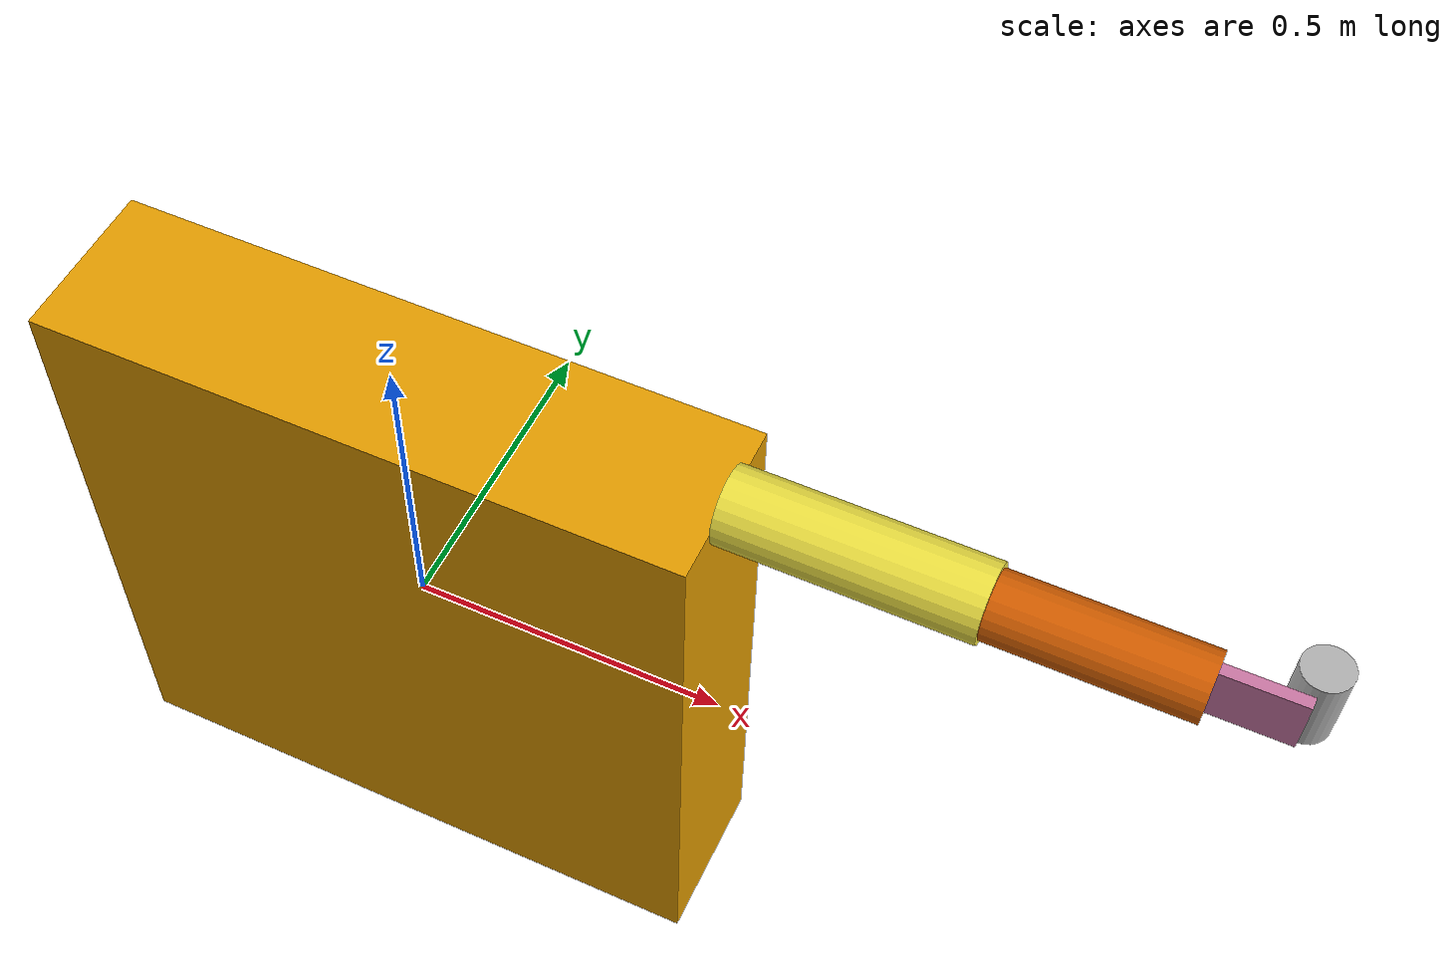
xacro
<?xml version="1.0"?>
<robot xmlns:xacro="http://www.ros.org/wiki/xacro" name="human_arm_model">

    <xacro:include filename="constants.urdf.xacro" />
    <xacro:include filename="macros.urdf.xacro" />

    <link name="torso">
        <visual>
            <geometry>
                <!-- Bullshit limit for now  -->
                <box size="1.0 ${0.2+ upperarm_circumference/ (2* math.pi)} 1.0"/>
            </geometry>
        </visual>
    </link>

    <!-- ___________________ Shoulder joint __________ -->

    <xacro:bodypart_template bodypart="shoulder" suffix="yaw" parent="torso">
        <origin xyz="0.5 0 0.5"/>
        <axis xyz="0 -1 0" />
        <limit effort="1000" lower="-1.1" upper="1.9" velocity="0.5" />
    </xacro:bodypart_template>

    <xacro:bodypart_template bodypart="shoulder" suffix="pitch" parent="yaw">
        <origin xyz="0 0 0"/>
        <axis xyz="0 0 1"/>
        <limit effort="1000" lower="-0.4" upper="3.3" velocity="0.5" />
    </xacro:bodypart_template>

    <xacro:bodypart_template bodypart="shoulder" suffix="roll" parent="pitch" child="upperarm">
        <origin xyz="0 0 0"/>
        <axis xyz="1 0 0"/>
        <!-- Bullshit limit for now  -->
        <limit effort="1000" lower="${shoulder_rot_min}" upper="${shoulder_rot_max}" velocity="0.5" />
    </xacro:bodypart_template>

    <link name="upperarm">
        <visual>
            <geometry>
                <cylinder length="${upperarm_length}" radius="${upperarm_circumference/ (2* math.pi)}"/>
            </geometry>
            <origin xyz="${upperarm_length/2} 0 0" rpy="0 ${math.pi/2} 0" />
        </visual>
    </link>

    <!-- ____________________ Elbow joint ___________ -->

    <xacro:bodypart_template bodypart="elbow" suffix="yaw" parent="upperarm">
        <origin xyz="${upperarm_length} 0 0"/>
        <axis xyz="0 0 1" />
        <limit effort="1000" lower="0" upper="2.5" velocity="0.5" />
    </xacro:bodypart_template>

    <xacro:bodypart_template bodypart="elbow" suffix="roll" parent="yaw" child="forearm">
        <origin xyz="0 0 0"/>
        <axis xyz="1 0 0" />
        <!-- Bullshit limit for now  -->
        <limit effort="1000" lower="${(-math.pi/180)*45}" upper="${(math.pi/180)*0}" velocity="0.5" />
    </xacro:bodypart_template>

    <link name="forearm">
        <visual>
            <geometry>
                <cylinder length="${elbow_wrist_length}" radius="${forearm_circumference / (2*math.pi)}" />
            </geometry>
            <origin xyz="${elbow_wrist_length/2} 0 0" rpy="0 ${math.pi/2} 0"/>
        </visual>
    </link>

    <!-- ___________________ wrist joint __________ -->

    <xacro:bodypart_template bodypart="wrist" suffix="yaw" parent="forearm" child="hand">
        <origin xyz="${elbow_wrist_length} 0 0"/>
        <axis xyz="0 0 1" />
        <!-- Bullshit limit for now  -->
         <limit effort="1000" lower="${hand_palmarflexion}" upper="${hand_dorsalextension}" velocity="0.5" />
    </xacro:bodypart_template>

    <link name="hand">
        <visual>
            <geometry>
                <box size="${hand_thickness} ${hand_length} ${hand_width}"/>
            </geometry>
            <origin xyz="${hand_length/2} 0 0" rpy="0 0 ${math.pi/2}"/>
        </visual>
    </link>

    <joint name="hand_can_joint" type="fixed">
        <parent link="hand"/>
        <child link="can"/>
        <origin xyz="${hand_length} ${hand_thickness/2} 0"/>
    </joint>

    <link name="can">
        <visual>
            <geometry>
                <cylinder length="${can_height}" radius="${can_radius}"/>
            </geometry>
            <origin xyz="0 ${can_radius} 0"/>
        </visual>
    </link>
</robot>

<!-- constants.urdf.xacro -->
<robot xmlns:xacro="http://www.ros.org/wiki/xacro">

    <!-- sizes -->
    <xacro:property name="upperarm_length" value="0.3637"/>
    <xacro:property name="elbow_wrist_length" value="0.2869"/>
    <xacro:property name="upperarm_circumference" value="0.3581"/>
    <xacro:property name="wrist_circumference" value="0.1759"/>
    <xacro:property name="forearm_circumference" value="0.3101"/>
    <xacro:property name="can_radius" value="0.035"/>
    <xacro:property name="can_height" value="0.12" />
    <xacro:property name="hand_circumference" value="0.2123"/>
    <!-- Length of handpalm which might be approx. center of can: -->
    <xacro:property name="hand_length" value="0.1165" />
    <xacro:property name="hand_thickness" value="${(hand_circumference-2*hand_width)/2}" />
    <xacro:property name="hand_width" value="0.0883" />

    <xacro:property name="waist_back_length" value="0.4776" />
    <xacro:property name="shoulder_length" value="0.1498" />
    <xacro:property name="clavicle_link_length" value="0.2081" />
    <xacro:property name="sternum_radius" value="${clavicle_link_length - shoulder_length}" />

    <!-- Winkel -->
    <!-- Diese sind Bewegungsamplituden und nicht 1:1 im Model vorwendbar. -->
    <xacro:property name="shoulder_ab_min" value="${-10*math.pi/180}" />
    <xacro:property name="shoulder_ab_max" value="${170*math.pi/180}" />
    <xacro:property name="shoulder_flex_min" value="${-60*math.pi/180}" />
    <xacro:property name="shoulder_flex_max" value="${170*math.pi/180}" />
    <xacro:property name="shoulder_rot_min" value="${-60*math.pi/180}" />
    <xacro:property name="shoulder_rot_max" value="${90*math.pi/180}" />
    <xacro:property name="elbow_flex_min" value="${-90*math.pi/180}" />
    <xacro:property name="elbow_flex_max" value="${60*math.pi/180}" />

    <!-- angles from anatomy book -->
    <xacro:property name="hand_palmarflexion" value="${-85*math.pi /180}" />
    <xacro:property name="hand_dorsalextension" value="${85*math.pi /180}" />

</robot>

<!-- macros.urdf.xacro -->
<robot xmlns:xacro="http://www.ros.org/wiki/xacro">

    <!-- ___________________ Macro for joints __________ -->

    <xacro:macro name="bodypart_template" params="bodypart suffix parent child:='' *origin *axis *limit">
        <joint name="${bodypart}_${suffix}_joint" type="revolute">
            <parent link="${parent if (parent in ['torso', 'upperarm', 'forearm']) else bodypart+'_'+parent+'_link'}"/>
            <child link="${child if child != '' else bodypart+'_' + suffix + '_link'}"/>
            <xacro:insert_block name="origin"/>
            <xacro:insert_block name="axis"/>
            <xacro:insert_block name="limit"/>
        </joint>
        <xacro:if value="${child == ''}">
            <link name="${bodypart}_${suffix}_link">
            </link>
        </xacro:if>
    </xacro:macro>

</robot>
